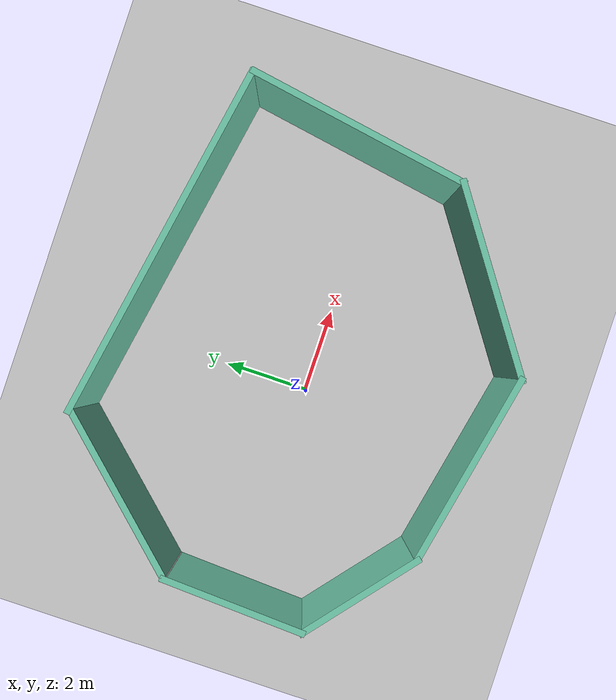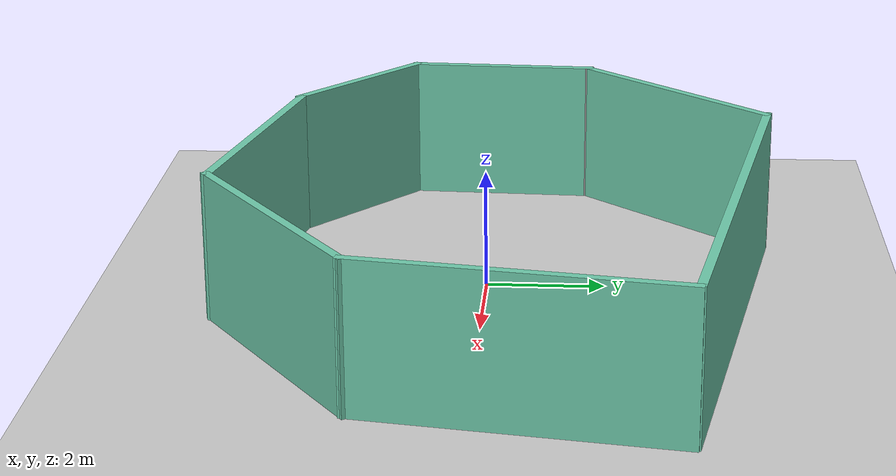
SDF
<sdf version="1.4">
 <world name="default">
  <include><uri>model://ground_plane</uri></include>
  <include><uri>model://sun</uri></include>
  <include><uri>model://testworld</uri><name>testworld</name></include>
 </world>
</sdf>

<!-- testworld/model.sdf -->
<sdf version='1.6'>
  <model name='testworld'>
    <pose frame=''>0.658844 0.198554 0 0 -0 0</pose>
    <link name='Wall_0'>
      <collision name='Wall_0_Collision'>
        <geometry>
          <box>
            <size>3.39895 0.15 2.5</size>
          </box>
        </geometry>
        <pose frame=''>0 0 1.25 0 -0 0</pose>
      </collision>
      <visual name='Wall_0_Visual'>
        <pose frame=''>0 0 1.25 0 -0 0</pose>
        <geometry>
          <box>
            <size>3.39895 0.15 2.5</size>
          </box>
        </geometry>
        <material>
          <script>
            <uri>file://media/materials/scripts/gazebo.material</uri>
            <name>Gazebo/Grey</name>
          </script>
          <ambient>0.435294 0.796078 0.67451 1</ambient>
        </material>
      </visual>
      <pose frame=''>-5.55047 -0.137505 0 0 0 -1.62144</pose>
    </link>
    <link name='Wall_1'>
      <collision name='Wall_1_Collision'>
        <geometry>
          <box>
            <size>3.12626 0.15 2.5</size>
          </box>
        </geometry>
        <pose frame=''>0 0 1.25 0 -0 0</pose>
      </collision>
      <visual name='Wall_1_Visual'>
        <pose frame=''>0 0 1.25 0 -0 0</pose>
        <geometry>
          <box>
            <size>3.12626 0.15 2.5</size>
          </box>
        </geometry>
        <material>
          <script>
            <uri>file://media/materials/scripts/gazebo.material</uri>
            <name>Gazebo/Grey</name>
          </script>
          <ambient>0.435294 0.796078 0.67451 1</ambient>
        </material>
      </visual>
      <pose frame=''>-4.48475 -2.70685 0 0 0 -0.689744</pose>
    </link>
    <link name='Wall_2'>
      <collision name='Wall_2_Collision'>
        <geometry>
          <box>
            <size>4.67102 0.15 2.5</size>
          </box>
        </geometry>
        <pose frame=''>0 0 1.25 0 -0 0</pose>
      </collision>
      <visual name='Wall_2_Visual'>
        <pose frame=''>0 0 1.25 0 -0 0</pose>
        <geometry>
          <box>
            <size>4.67102 0.15 2.5</size>
          </box>
        </geometry>
        <material>
          <script>
            <uri>file://media/materials/scripts/gazebo.material</uri>
            <name>Gazebo/Grey</name>
          </script>
          <ambient>0.435294 0.796078 0.67451 1</ambient>
        </material>
      </visual>
      <pose frame=''>-1.1088 -4.09966 0 0 0 -0.205292</pose>
    </link>
    <link name='Wall_3'>
      <collision name='Wall_3_Collision'>
        <geometry>
          <box>
            <size>4.65815 0.15 2.5</size>
          </box>
        </geometry>
        <pose frame=''>0 0 1.25 0 -0 0</pose>
      </collision>
      <visual name='Wall_3_Visual'>
        <pose frame=''>0 0 1.25 0 -0 0</pose>
        <geometry>
          <box>
            <size>4.65815 0.15 2.5</size>
          </box>
        </geometry>
        <material>
          <script>
            <uri>file://media/materials/scripts/gazebo.material</uri>
            <name>Gazebo/Grey</name>
          </script>
          <ambient>0.435294 0.796078 0.67451 1</ambient>
        </material>
      </visual>
      <pose frame=''>2.94174 -3.29118 0 0 -0 0.606196</pose>
    </link>
    <link name='Wall_4'>
      <collision name='Wall_4_Collision'>
        <geometry>
          <box>
            <size>5.3203 0.15 2.5</size>
          </box>
        </geometry>
        <pose frame=''>0 0 1.25 0 -0 0</pose>
      </collision>
      <visual name='Wall_4_Visual'>
        <pose frame=''>0 0 1.25 0 -0 0</pose>
        <geometry>
          <box>
            <size>5.3203 0.15 2.5</size>
          </box>
        </geometry>
        <material>
          <script>
            <uri>file://media/materials/scripts/gazebo.material</uri>
            <name>Gazebo/Grey</name>
          </script>
          <ambient>0.435294 0.796078 0.67451 1</ambient>
        </material>
      </visual>
      <pose frame=''>5.21547 0.541147 0 0 -0 1.40124</pose>
    </link>
    <link name='Wall_5'>
      <collision name='Wall_5_Collision'>
        <geometry>
          <box>
            <size>8.54326 0.15 2.5</size>
          </box>
        </geometry>
        <pose frame=''>0 0 1.25 0 -0 0</pose>
      </collision>
      <visual name='Wall_5_Visual'>
        <pose frame=''>0 0 1.25 0 -0 0</pose>
        <geometry>
          <box>
            <size>8.54326 0.15 2.5</size>
          </box>
        </geometry>
        <material>
          <script>
            <uri>file://media/materials/scripts/gazebo.material</uri>
            <name>Gazebo/Grey</name>
          </script>
          <ambient>0.435294 0.796078 0.67451 1</ambient>
        </material>
      </visual>
      <pose frame=''>1.49036 3.85596 0 0 -0 2.9651</pose>
    </link>
    <link name='Wall_6'>
      <collision name='Wall_6_Collision'>
        <geometry>
          <box>
            <size>4.31834 0.15 2.5</size>
          </box>
        </geometry>
        <pose frame=''>0 0 1.25 0 -0 0</pose>
      </collision>
      <visual name='Wall_6_Visual'>
        <pose frame=''>0 0 1.25 0 -0 0</pose>
        <geometry>
          <box>
            <size>4.31834 0.15 2.5</size>
          </box>
        </geometry>
        <material>
          <script>
            <uri>file://media/materials/scripts/gazebo.material</uri>
            <name>Gazebo/Grey</name>
          </script>
          <ambient>0.435294 0.796078 0.67451 1</ambient>
        </material>
      </visual>
      <pose frame=''>-4.02475 3.03136 0 0 0 -2.31617</pose>
    </link>
    <link name='Wall_7'>
      <collision name='Wall_7_Collision'>
        <geometry>
          <box>
            <size>0.15 0.15 2.5</size>
          </box>
        </geometry>
        <pose frame=''>0 0 1.25 0 -0 0</pose>
      </collision>
      <visual name='Wall_7_Visual'>
        <pose frame=''>0 0 1.25 0 -0 0</pose>
        <geometry>
          <box>
            <size>0.15 0.15 2.5</size>
          </box>
        </geometry>
        <material>
          <script>
            <uri>file://media/materials/scripts/gazebo.material</uri>
            <name>Gazebo/Grey</name>
          </script>
          <ambient>1 1 1 1</ambient>
        </material>
      </visual>
      <pose frame=''>-5.46823 1.48489 0 0 -0 0</pose>
    </link>
    <static>1</static>
  </model>
</sdf>
